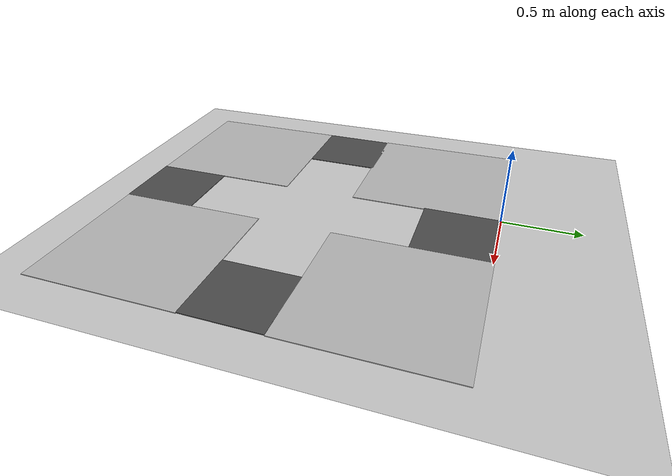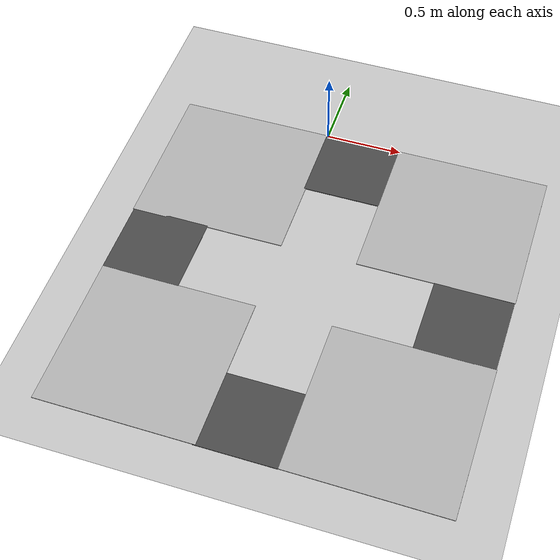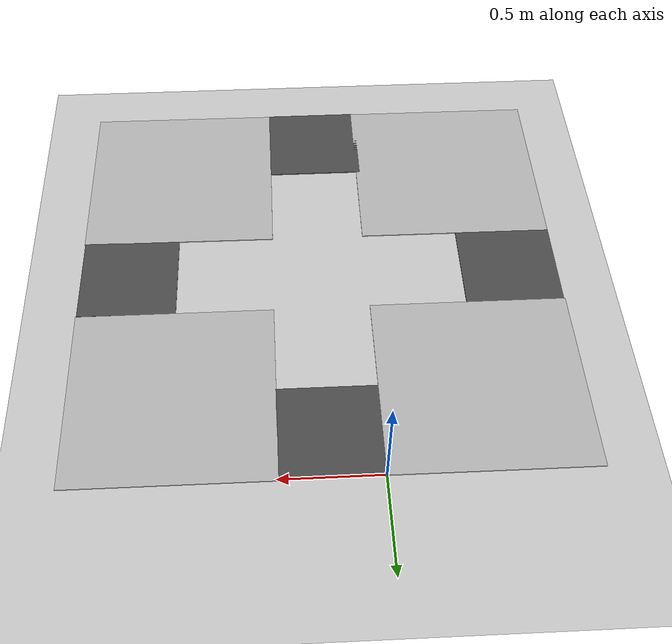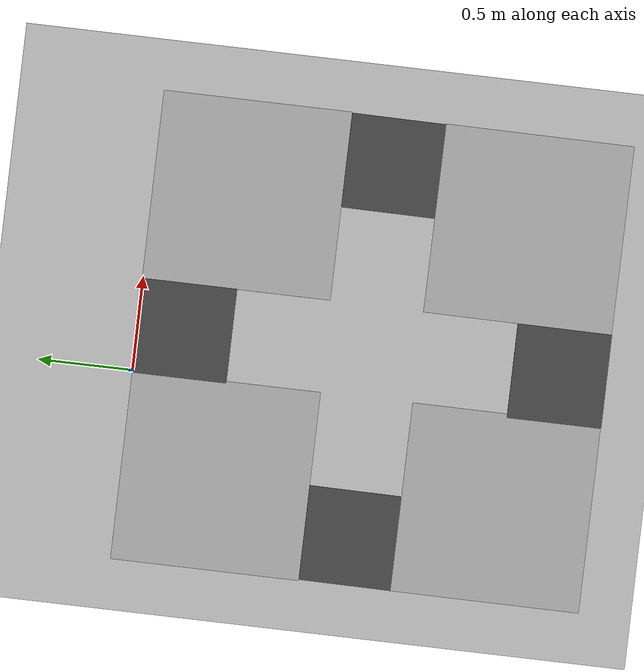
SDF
<sdf version="1.6">
 <world name="default">
  <light name="sun" type="directional">
   <pose>0 0 10 0 -0 0</pose>
   <diffuse>0.8 0.8 0.8 1</diffuse>
   <specular>0.2 0.2 0.2 1</specular>
   <attenuation>
    <range>1000</range>
    <constant>0.9</constant>
    <linear>0.01</linear>
    <quadratic>0.001</quadratic>
   </attenuation>
   <direction>-0.5 0.1 -0.9</direction>
  </light>
  <model name="ground_plane">
   <static>1</static>
   <link name="link">
    <collision name="collision">
     <geometry><plane><normal>0 0 1</normal><size>100 100</size></plane></geometry>
     <surface><friction><ode><mu>100</mu><mu2>50</mu2></ode></friction></surface>
    </collision>
    <visual name="visual">
     <cast_shadows>0</cast_shadows>
     <geometry><plane><normal>0 0 1</normal><size>100 100</size></plane></geometry>
     <material>
      <script><uri>file://media/materials/scripts/gazebo.material</uri><name>Gazebo/Grey</name></script>
     </material>
    </visual>
   </link>
  </model>
  <gravity>0 0 -9.8</gravity>
  <magnetic_field>6e-06 2.3e-05 -4.2e-05</magnetic_field>
  <atmosphere type="adiabatic"/>
  <physics name="default_physics" default="0" type="ode">
   <max_step_size>0.001</max_step_size>
   <real_time_factor>1</real_time_factor>
   <real_time_update_rate>1000</real_time_update_rate>
  </physics>
  <scene><ambient>0.4 0.4 0.4 1</ambient><background>0.7 0.7 0.7 1</background><shadows>1</shadows></scene>
  <spherical_coordinates>
   <surface_model>EARTH_WGS84</surface_model>
   <latitude_deg>0</latitude_deg>
   <longitude_deg>0</longitude_deg>
   <elevation>0</elevation>
   <heading_deg>0</heading_deg>
  </spherical_coordinates>
  <model name="road_plane">
   <static>1</static>
   <link name="link">
    <collision name="collision"><geometry><box><size>0.5 0.5 0.005</size></box></geometry></collision>
    <visual name="visual">
     <cast_shadows>0</cast_shadows>
     <geometry><box><size>0.5 0.5 0.005</size></box></geometry>
     <material>
      <script>
       <uri>model://road_plane/materials/scripts</uri>
       <uri>model://road_plane/materials/textures</uri>
       <name>vrc/road</name>
      </script>
     </material>
    </visual>
   </link>
   <pose>0.23971 -0.248266 0 0 -0 0</pose>
  </model>
  <model name="road_diag">
   <static>1</static>
   <link name="link">
    <collision name="collision"><geometry><box><size>0.5 0.5 0.005</size></box></geometry></collision>
    <visual name="visual">
     <cast_shadows>0</cast_shadows>
     <geometry><box><size>1 1 0.005</size></box></geometry>
     <material>
      <script>
       <uri>model://road_diag/materials/scripts</uri>
       <uri>model://road_diag/materials/textures</uri>
       <name>vrc/diag</name>
      </script>
     </material>
    </visual>
   </link>
   <pose>0.988148 -0.493371 0 0 -0 0</pose>
  </model>
  <model name="road_diag_clone">
   <static>1</static>
   <link name="link">
    <collision name="collision"><geometry><box><size>0.5 0.5 0.005</size></box></geometry></collision>
    <visual name="visual">
     <cast_shadows>0</cast_shadows>
     <geometry><box><size>1 1 0.005</size></box></geometry>
     <material>
      <script>
       <uri>model://road_diag/materials/scripts</uri>
       <uri>model://road_diag/materials/textures</uri>
       <name>vrc/diag</name>
      </script>
     </material>
    </visual>
   </link>
   <pose>0.981052 -1.99008 0 0 0 -1.57575</pose>
  </model>
  <model name="road_plane_clone">
   <static>1</static>
   <link name="link">
    <collision name="collision"><geometry><box><size>0.5 0.5 0.005</size></box></geometry></collision>
    <visual name="visual">
     <cast_shadows>0</cast_shadows>
     <geometry><box><size>0.5 0.5 0.005</size></box></geometry>
     <material>
      <script>
       <uri>model://road_plane/materials/scripts</uri>
       <uri>model://road_plane/materials/textures</uri>
       <name>vrc/road</name>
      </script>
     </material>
    </visual>
   </link>
   <pose>1.23161 -1.24313 0 0 0 -1.57807</pose>
  </model>
  <model name="road_plane_clone_0">
   <static>1</static>
   <link name="link">
    <collision name="collision"><geometry><box><size>0.5 0.5 0.005</size></box></geometry></collision>
    <visual name="visual">
     <cast_shadows>0</cast_shadows>
     <geometry><box><size>0.5 0.5 0.005</size></box></geometry>
     <material>
      <script>
       <uri>model://road_plane/materials/scripts</uri>
       <uri>model://road_plane/materials/textures</uri>
       <name>vrc/road</name>
      </script>
     </material>
    </visual>
   </link>
   <pose>0.231592 -2.23987 0 0 -0 0</pose>
  </model>
  <model name="road_diag_clone_0">
   <static>1</static>
   <link name="link">
    <collision name="collision"><geometry><box><size>0.5 0.5 0.005</size></box></geometry></collision>
    <visual name="visual">
     <cast_shadows>0</cast_shadows>
     <geometry><box><size>1 1 0.005</size></box></geometry>
     <material>
      <script>
       <uri>model://road_diag/materials/scripts</uri>
       <uri>model://road_diag/materials/textures</uri>
       <name>vrc/diag</name>
      </script>
     </material>
    </visual>
   </link>
   <pose>-0.498586 -1.98592 0 0 -0 3.13893</pose>
  </model>
  <model name="road_diag_clone_0_clone">
   <static>1</static>
   <link name="link">
    <collision name="collision"><geometry><box><size>0.5 0.5 0.005</size></box></geometry></collision>
    <visual name="visual">
     <cast_shadows>0</cast_shadows>
     <geometry><box><size>1 1 0.005</size></box></geometry>
     <material>
      <script>
       <uri>model://road_diag/materials/scripts</uri>
       <uri>model://road_diag/materials/textures</uri>
       <name>vrc/diag</name>
      </script>
     </material>
    </visual>
   </link>
   <pose>-0.49965 -0.498554 0 0 -0 1.57061</pose>
  </model>
  <model name="road_plane_clone_clone">
   <static>1</static>
   <link name="link">
    <collision name="collision"><geometry><box><size>0.5 0.5 0.005</size></box></geometry></collision>
    <visual name="visual">
     <cast_shadows>0</cast_shadows>
     <geometry><box><size>0.5 0.5 0.005</size></box></geometry>
     <material>
      <script>
       <uri>model://road_plane/materials/scripts</uri>
       <uri>model://road_plane/materials/textures</uri>
       <name>vrc/road</name>
      </script>
     </material>
    </visual>
   </link>
   <pose>-0.745405 -1.23739 0 0 0 -1.57807</pose>
  </model>
 </world>
</sdf>
